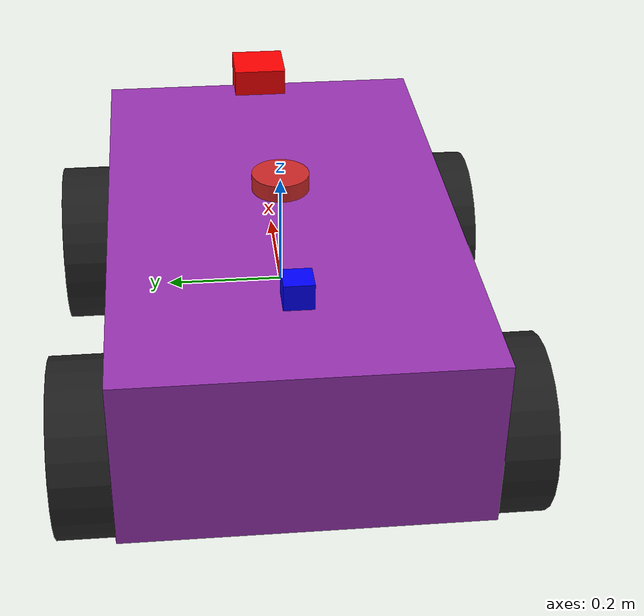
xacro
<?xml version="1.0"?>
<robot name="differential_drive_robot"
    xmlns:xacro="http://www.ros.org/wiki/xacro">

    <!--body dimnsion-->
    <xacro:property name="bodyLinkx" value="1"/>
    <xacro:property name="bodyLinky" value="0.6"/>
    <xacro:property name="bodyLinkz" value="0.3"/>

    <!--wheel dimesnion-->

    <xacro:property name="WheelLinkRadius" value="0.15"/>
    <xacro:property name="WheelLinkThick" value="0.1"/>
    <xacro:property name="WheelLinkLocaZ" value="-0.1"/>

    <!-- Materail density-->
    <xacro:property name="BodyDense" value="2500"/>
    <xacro:property name="WheelDense" value="2500"/>

    <xacro:property name="PI" value="3.14159265"/>

    <!--mass and stuff-->

    <xacro:property name="BodyMass" value="${BodyDense*bodyLinkx*bodyLinky*bodyLinkz}"/>
    <xacro:property name="WheelMass" value="${WheelDense*PI*WheelLinkRadius*WheelLinkRadius*WheelLinkThick}"/>

    <!--moment of intia-->
    <xacro:property name="IzWheel" value="${0.5*WheelMass*WheelLinkRadius*WheelLinkRadius}"/>
    <xacro:property name="IWheel" value="${(1.0/12.0)*WheelMass*(3.0*WheelLinkRadius*WheelLinkRadius+WheelLinkThick*WheelLinkThick)}"/>

    <xacro:macro name="InertiaWheel">
        <inertial>
            <origin rpy="0 0 0" xyz="0 0 0"/>
            <mass value="${WheelMass}"/>
            <inertia ixx="${IWheel}" ixy="0.0" ixz="0.0" iyy="${IWheel}" iyz="0" izz="${IzWheel}" />
        </inertial>
    </xacro:macro>

    <!--gazebo file include-->

    <xacro:include filename="$(find robot_wheel)/model/robot.gazebo" />

    <!-- links and stuff-->

    <!-- IDK wy dummy link but  gazebo yaps a lot-->

    <!--crazy links-->
    <link name="BodyLink">
        <visual>
            <geometry>
                <box size="${bodyLinkx} ${bodyLinky} ${bodyLinkz}"/>
            </geometry>
            <origin rpy="0 0 0" xyz="0 0 0"/>
        </visual>

        <collision>
            <geometry>
                <box size="${bodyLinkx} ${bodyLinky} ${bodyLinkz}"/>
            </geometry>
            <origin rpy="0 0 0" xyz="0 0 0"/>
        </collision>

        <inertial>
            <origin rpy="0 0 0" xyz="0 0 0"/>
            <mass value="${BodyMass}"/>
            <inertia ixx="${(1.0/12.0) * BodyMass * (bodyLinky * bodyLinky + bodyLinkz * bodyLinkz)}" ixy="0.0" ixz="0.0" iyy="${(1.0/12.0) * BodyMass * (bodyLinkx * bodyLinkx + bodyLinkz * bodyLinkz)}" iyz="0.0" izz="${(1.0/12.0) * BodyMass * (bodyLinky * bodyLinky + bodyLinkx * bodyLinkx)}"/>
        </inertial>
    </link>

    <!--joint hell-->
    <joint name="Wheel1Joint" type="continuous">
        <parent link="BodyLink"/>
        <child link="Wheel1Link"/>
        <origin xyz="${-(bodyLinkx/2)+1.2*WheelLinkRadius} ${-(bodyLinky/2)-WheelLinkThick/2} ${WheelLinkLocaZ}" rpy="0 0 0"/>
        <axis xyz="0 1 0"/>
        <limit effort="1000" velocity="1000"/>
        <dynamics damping="1.0" friction="1.0"/>
    </joint>

    <link name="Wheel1Link">
        <visual>
            <origin xyz="0 0 0" rpy="1.570795 0 0"/>
            <geometry>
                <cylinder radius="${WheelLinkRadius}" length="${WheelLinkThick}"/>
            </geometry>
        </visual>

        <collision>
            <origin xyz="0 0 0" rpy="1.570795 0 0"/>
            <geometry>
                <cylinder radius="${WheelLinkRadius}" length="${WheelLinkThick}"/>
            </geometry>
        </collision>
        <xacro:InertiaWheel/>
    </link>

    <joint name="Wheel2Joint" type="continuous">
        <parent link="BodyLink"/>
        <child link="Wheel2Link"/>
        <origin xyz="${-(bodyLinkx/2)+1.2*WheelLinkRadius} ${(bodyLinky/2)+WheelLinkThick/2} ${WheelLinkLocaZ}" rpy="0 0 0"/>
        <axis xyz="0 1 0"/>
        <limit effort="1000" velocity="1000"/>
        <dynamics damping="1.0" friction="1.0"/>
    </joint>

    <link name="Wheel2Link">
        <visual>
            <origin xyz="0 0 0" rpy="1.570795 0 0"/>
            <geometry>
                <cylinder radius="${WheelLinkRadius}" length="${WheelLinkThick}"/>
            </geometry>
        </visual>

        <collision>
            <origin xyz="0 0 0" rpy="1.570795 0 0"/>
            <geometry>
                <cylinder radius="${WheelLinkRadius}" length="${WheelLinkThick}"/>
            </geometry>
        </collision>
        <xacro:InertiaWheel/>
    </link>

    <joint name="Wheel3Joint" type="continuous">
        <parent link="BodyLink"/>
        <child link="Wheel3Link"/>
        <origin xyz="${(bodyLinkx/2)-1.2*WheelLinkRadius} ${-(bodyLinky/2)-WheelLinkThick/2} ${WheelLinkLocaZ}" rpy="0 0 0"/>
        <axis xyz="0 1 0"/>
        <limit effort="1000" velocity="1000"/>
        <dynamics damping="1.0" friction="1.0"/>
    </joint>

    <link name="Wheel3Link">
        <visual>
            <origin xyz="0 0 0" rpy="1.570795 0 0"/>
            <geometry>
                <cylinder radius="${WheelLinkRadius}" length="${WheelLinkThick}"/>
            </geometry>
        </visual>

        <collision>
            <origin xyz="0 0 0" rpy="1.570795 0 0"/>
            <geometry>
                <cylinder radius="${WheelLinkRadius}" length="${WheelLinkThick}"/>
            </geometry>
        </collision>
        <xacro:InertiaWheel/>
    </link>

    <joint name="Wheel4Joint" type="continuous">
        <parent link="BodyLink"/>
        <child link="Wheel4Link"/>
        <origin xyz="${(bodyLinkx/2)-1.2*WheelLinkRadius} ${(bodyLinky/2)+WheelLinkThick/2} ${WheelLinkLocaZ}" rpy="0 0 0"/>
        <axis xyz="0 1 0"/>
        <limit effort="1000" velocity="1000"/>
        <dynamics damping="1.0" friction="1.0"/>
    </joint>

    <link name="Wheel4Link">
        <visual>
            <origin xyz="0 0 0" rpy="1.570795 0 0"/>
            <geometry>
                <cylinder radius="${WheelLinkRadius}" length="${WheelLinkThick}"/>
            </geometry>
        </visual>

        <collision>
            <origin xyz="0 0 0" rpy="1.570795 0 0"/>
            <geometry>
                <cylinder radius="${WheelLinkRadius}" length="${WheelLinkThick}"/>
            </geometry>
        </collision>
        <xacro:InertiaWheel/>
    </link>

    <!--done booyah-->
    <!--gps sensor-->

    <link name="gpsLink">
        <visual>
            <geometry>
                <box size="0.05 0.05 0.05"/>
            </geometry>
            <material name="blue">
                <color rgba="0.0 0.0 1.0 1.0"/>
            </material>
        </visual>
    </link>

    <joint name="gpsJoint" type="fixed">
        <parent link="BodyLink"/>
        <child link="gpsLink"/>
        <origin xyz="-0.3 0 ${bodyLinkz/2+0.02}"/>
    </joint>

    <link name="imuLink">
        <visual>
            <geometry>
                <box size="0.1 0.1 0.1"/>
            </geometry>
            <material name="red">
                <color rgba="1.0 0.0 0.0 1.0 "/>
            </material>
        </visual>
    </link>

    <joint name="imuJoint" type="fixed">
        <parent link="BodyLink"/>
        <child link="imuLink"/>
        <origin xyz="${bodyLinkx/2} 0.0 ${bodyLinkz/2}" rpy=" 0 0 0"/>
    </joint>

    <link name="lidarLink">
        <visual>
            <geometry>
                <cylinder radius="0.05" length="0.03"/>
            </geometry>
        </visual>
    </link>

    <joint name="lidarJoint" type="fixed">
        <parent link="BodyLink"/>
        <child link="lidarLink"/>
        <origin xyz="0.0 0.0 ${(bodyLinkz/2)+0.05}" rpy=" 0 0 0"/>
    </joint>

    <!-- Camera Link -->
    <link name="scamera_link">
    </link>

    <link name="camera_frame_link"></link>

    <link name="camera_link"></link>

    <!-- Camera Joint (attach to human head) -->
    <joint name="body_to_scamera_link" type="fixed">
        <parent link="BodyLink"/>
        <child link="scamera_link"/>
        <origin xyz="${bodyLinkx/2}  0  0.25" rpy="0 0 0"/>
    </joint>

    <joint name="camera_link_to_camera_frame_link" type="fixed">
        <parent link="scamera_link"/>
        <child link="camera_frame_link"/>
        <origin xyz="0 0 0" rpy="${-PI/2} 0 ${-PI/2}"/>
    </joint>

    <joint name="body_to_camera_link" type="fixed">
        <parent link="BodyLink"/>
        <child link="camera_link"/>
        <origin xyz="${bodyLinkx/2}  0  0.25" rpy="0 0 0"/>
    </joint>

</robot>
